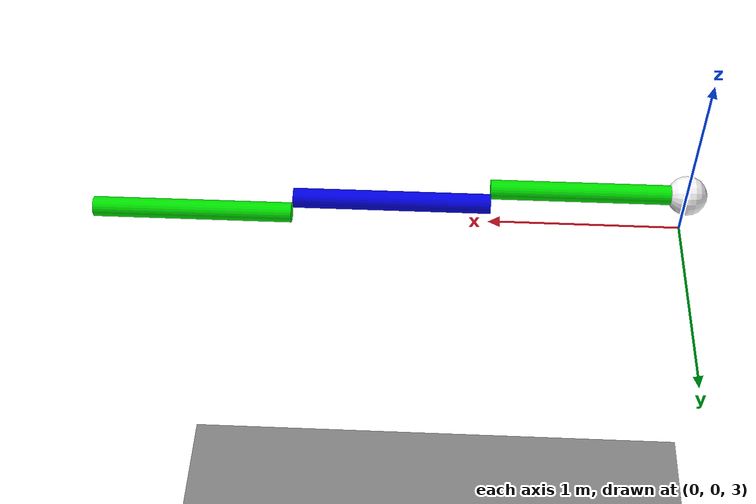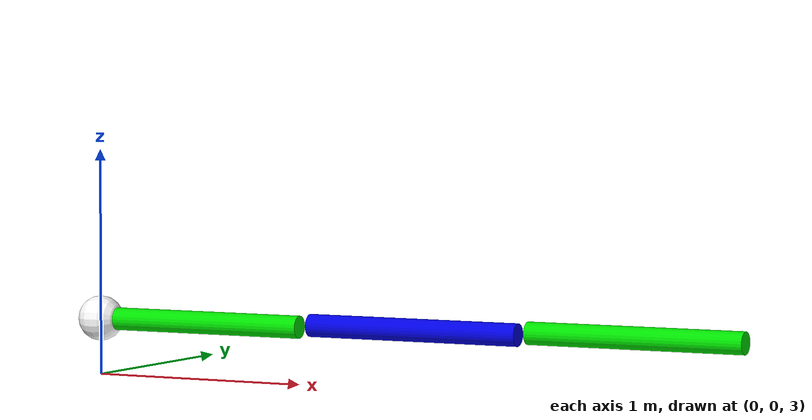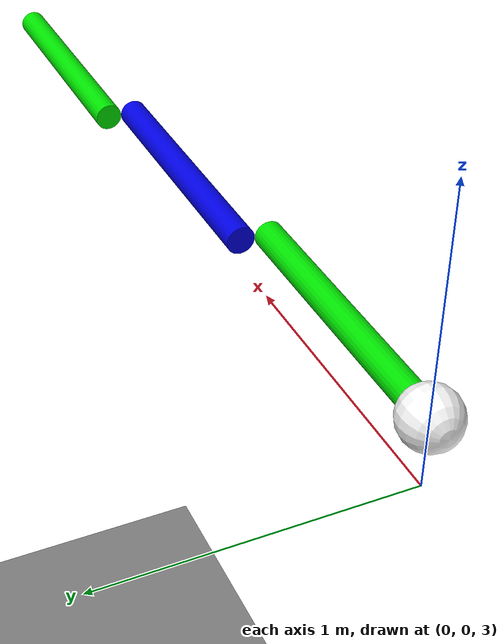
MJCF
<mujoco>
	<option timestep="0.001" integrator="RK4" gravity="0 0 0">
		<flag sensornoise="enable" energy="enable" contact="disable" />
	</option>
	<worldbody>
		<light diffuse=".5 .5 .5" pos="0 0 3" dir="0 0 -1"/>
		<geom type="plane" size="3 1 0.1" rgba=".5 0.5 0.5 1"/>
		<body pos="0.5 0 3.25" euler="0 90 0">
			<joint name="pin" type="hinge" axis = "0 -1 0" pos="0 0 -0.5"/>
			<geom type="cylinder" size="0.05 0.5" rgba="0 .9 0 1" mass="1"/>
			<site name="fixed_point" pos="0 0 -0.5" size="0.1" rgba="1 1 1 1"/>
      		<body pos="0 0.1 1" euler="0 0 0">
				<joint name="pin2" type="hinge" axis = "0 -1 0" pos="0 0 -0.5"/>
				<geom type="cylinder" size="0.05 0.5" rgba="0 0 .9 1" mass="1"/>
				<body pos="0 0.1 1" euler="0 0 0">
					<joint name="pin3" type="hinge" axis = "0 -1 0" pos="0 0 -0.5"/>
					<geom type="cylinder" size="0.05 0.5" rgba="0 .9 0 1" mass="1"/>
				</body>
			</body>

		</body>
	</worldbody>

	<actuator>
		<motor name="motor1" joint="pin" gear="1"/>
		<motor name="motor2" joint="pin2" gear="1"/>
		<motor name="motor3" joint="pin3" gear="1"/>
	</actuator>

	<sensor>
		<jointpos joint="pin"/>
		<jointpos joint="pin2"/>
		<jointpos joint="pin3"/>
		<jointvel joint="pin"/>
		<jointvel joint="pin2"/>
		<jointvel joint="pin3"/>
		<actuatorfrc actuator="motor1"/>
		<actuatorfrc actuator="motor2"/>
		<actuatorfrc actuator="motor3"/>
	</sensor>
</mujoco>
